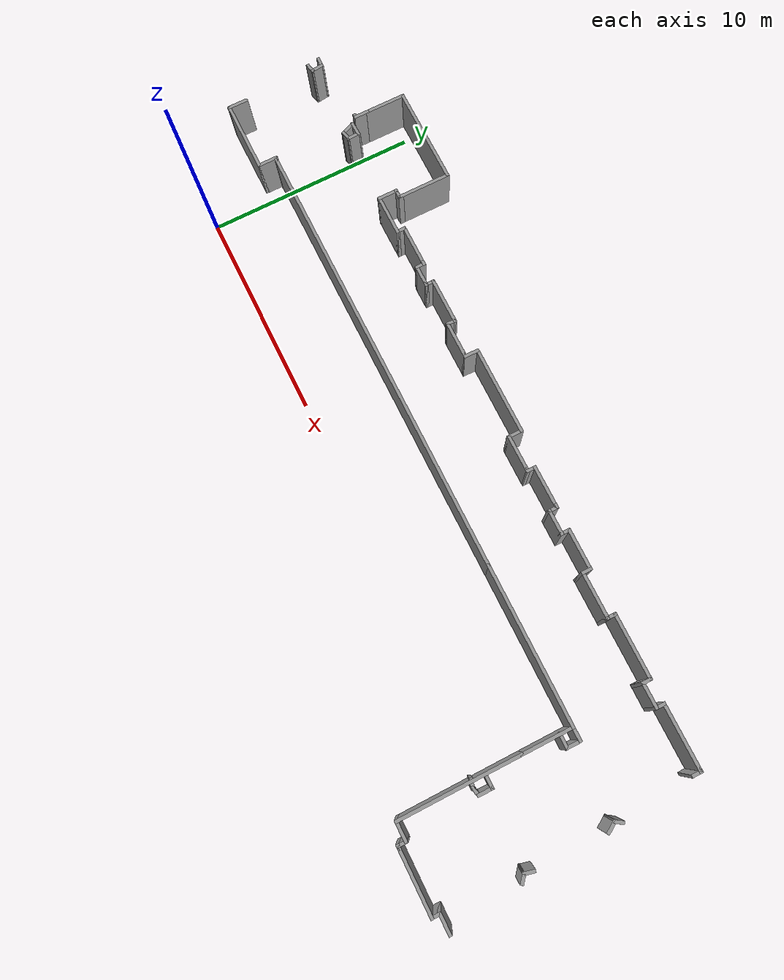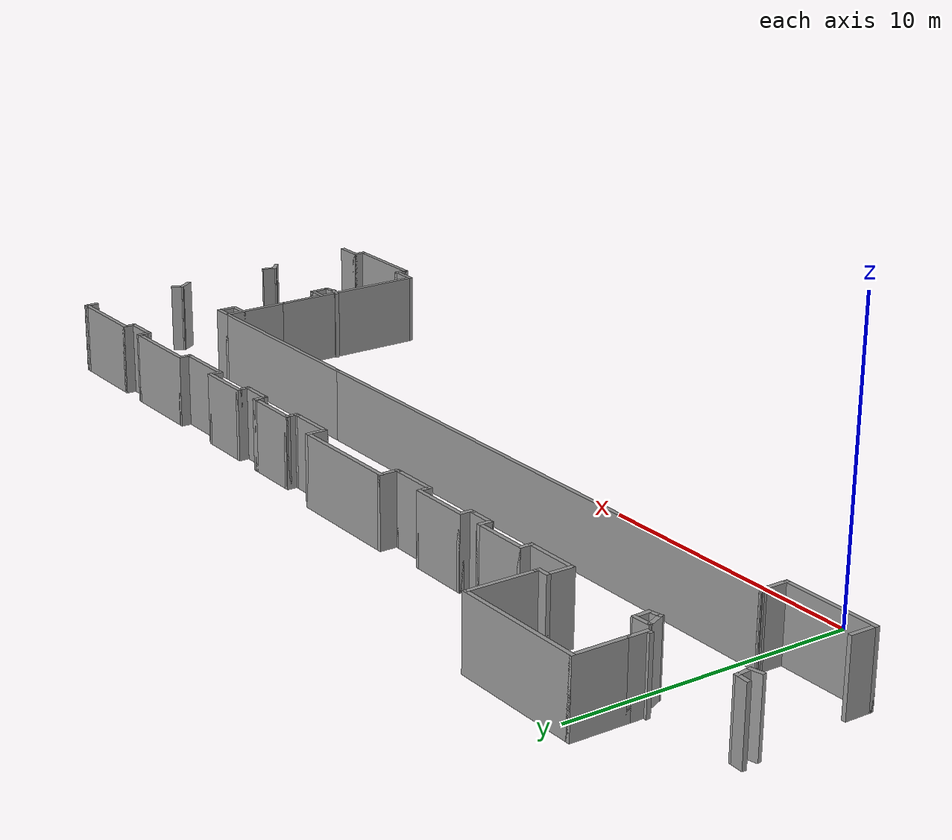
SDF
<sdf version="1.7">
 <model name="TD_n2">
  <pose>-6.42415 -9.1609 0 0 -0 0</pose>
  <link name="Wall_166">
   <collision name="Wall_166_Collision">
    <geometry><box><size>0.25 0.15 2.5</size></box></geometry>
    <pose>0 0 1.25 0 -0 0</pose>
   </collision>
   <visual name="Wall_166_Visual">
    <pose>0 0 1.25 0 -0 0</pose>
    <geometry><box><size>0.25 0.15 2.5</size></box></geometry>
    <material>
     <script><uri>file://media/materials/scripts/gazebo.material</uri><name>Gazebo/Grey</name></script>
     <ambient>1 1 1 1</ambient>
    </material>
    <meta><layer>0</layer></meta>
   </visual>
   <pose>5.50735 17.1407 0 0 -0 0</pose>
  </link>
  <link name="Wall_167">
   <collision name="Wall_167_Collision">
    <geometry><box><size>0.75 0.15 2.5</size></box></geometry>
    <pose>0 0 1.25 0 -0 0</pose>
   </collision>
   <visual name="Wall_167_Visual">
    <pose>0 0 1.25 0 -0 0</pose>
    <geometry><box><size>0.75 0.15 2.5</size></box></geometry>
    <material>
     <script><uri>file://media/materials/scripts/gazebo.material</uri><name>Gazebo/Grey</name></script>
     <ambient>1 1 1 1</ambient>
    </material>
    <meta><layer>0</layer></meta>
   </visual>
   <pose>5.55735 17.4407 0 0 -0 1.5708</pose>
  </link>
  <link name="Wall_168">
   <collision name="Wall_168_Collision">
    <geometry><box><size>2 0.15 2.5</size></box></geometry>
    <pose>0 0 1.25 0 -0 0</pose>
   </collision>
   <visual name="Wall_168_Visual">
    <pose>0 0 1.25 0 -0 0</pose>
    <geometry><box><size>2 0.15 2.5</size></box></geometry>
    <material>
     <script><uri>file://media/materials/scripts/gazebo.material</uri><name>Gazebo/Grey</name></script>
     <ambient>1 1 1 1</ambient>
    </material>
    <meta><layer>0</layer></meta>
   </visual>
   <pose>5.55735 18.6657 0 0 -0 1.5708</pose>
  </link>
  <link name="Wall_169">
   <collision name="Wall_169_Collision">
    <geometry><box><size>4.75 0.15 2.5</size></box></geometry>
    <pose>0 0 1.25 0 -0 0</pose>
   </collision>
   <visual name="Wall_169_Visual">
    <pose>0 0 1.25 0 -0 0</pose>
    <geometry><box><size>4.75 0.15 2.5</size></box></geometry>
    <material>
     <script><uri>file://media/materials/scripts/gazebo.material</uri><name>Gazebo/Grey</name></script>
     <ambient>1 1 1 1</ambient>
    </material>
    <meta><layer>0</layer></meta>
   </visual>
   <pose>7.85735 19.5907 0 0 -0 0</pose>
  </link>
  <link name="Wall_170">
   <collision name="Wall_170_Collision">
    <geometry><box><size>2.5 0.15 2.5</size></box></geometry>
    <pose>0 0 1.25 0 -0 0</pose>
   </collision>
   <visual name="Wall_170_Visual">
    <pose>0 0 1.25 0 -0 0</pose>
    <geometry><box><size>2.5 0.15 2.5</size></box></geometry>
    <material>
     <script><uri>file://media/materials/scripts/gazebo.material</uri><name>Gazebo/Grey</name></script>
     <ambient>1 1 1 1</ambient>
    </material>
    <meta><layer>0</layer></meta>
   </visual>
   <pose>10.1574 18.4157 0 0 -0 -1.5708</pose>
  </link>
  <link name="Wall_171">
   <collision name="Wall_171_Collision">
    <geometry><box><size>0.25 0.15 2.5</size></box></geometry>
    <pose>0 0 1.25 0 -0 0</pose>
   </collision>
   <visual name="Wall_171_Visual">
    <pose>0 0 1.25 0 -0 0</pose>
    <geometry><box><size>0.25 0.15 2.5</size></box></geometry>
    <material>
     <script><uri>file://media/materials/scripts/gazebo.material</uri><name>Gazebo/Grey</name></script>
     <ambient>1 1 1 1</ambient>
    </material>
    <meta><layer>0</layer></meta>
   </visual>
   <pose>10.1574 17.1907 0 0 -0 -1.5708</pose>
  </link>
  <link name="Wall_172">
   <collision name="Wall_172_Collision">
    <geometry><box><size>0.5 0.15 2.5</size></box></geometry>
    <pose>0 0 1.25 0 -0 0</pose>
   </collision>
   <visual name="Wall_172_Visual">
    <pose>0 0 1.25 0 -0 0</pose>
    <geometry><box><size>0.5 0.15 2.5</size></box></geometry>
    <material>
     <script><uri>file://media/materials/scripts/gazebo.material</uri><name>Gazebo/Grey</name></script>
     <ambient>1 1 1 1</ambient>
    </material>
    <meta><layer>0</layer></meta>
   </visual>
   <pose>9.98235 17.1407 0 0 -0 3.14159</pose>
  </link>
  <link name="Wall_173">
   <collision name="Wall_173_Collision">
    <geometry><box><size>1 0.15 2.5</size></box></geometry>
    <pose>0 0 1.25 0 -0 0</pose>
   </collision>
   <visual name="Wall_173_Visual">
    <pose>0 0 1.25 0 -0 0</pose>
    <geometry><box><size>1 0.15 2.5</size></box></geometry>
    <material>
     <script><uri>file://media/materials/scripts/gazebo.material</uri><name>Gazebo/Grey</name></script>
     <ambient>1 1 1 1</ambient>
    </material>
    <meta><layer>0</layer></meta>
   </visual>
   <pose>9.80735 16.7157 0 0 -0 -1.5708</pose>
  </link>
  <link name="Wall_174">
   <collision name="Wall_174_Collision">
    <geometry><box><size>2 0.15 2.5</size></box></geometry>
    <pose>0 0 1.25 0 -0 0</pose>
   </collision>
   <visual name="Wall_174_Visual">
    <pose>0 0 1.25 0 -0 0</pose>
    <geometry><box><size>2 0.15 2.5</size></box></geometry>
    <material>
     <script><uri>file://media/materials/scripts/gazebo.material</uri><name>Gazebo/Grey</name></script>
     <ambient>1 1 1 1</ambient>
    </material>
    <meta><layer>0</layer></meta>
   </visual>
   <pose>10.7324 16.2907 0 0 -0 0</pose>
  </link>
  <link name="Wall_175">
   <collision name="Wall_175_Collision">
    <geometry><box><size>0.5 0.15 2.5</size></box></geometry>
    <pose>0 0 1.25 0 -0 0</pose>
   </collision>
   <visual name="Wall_175_Visual">
    <pose>0 0 1.25 0 -0 0</pose>
    <geometry><box><size>0.5 0.15 2.5</size></box></geometry>
    <material>
     <script><uri>file://media/materials/scripts/gazebo.material</uri><name>Gazebo/Grey</name></script>
     <ambient>1 1 1 1</ambient>
    </material>
    <meta><layer>0</layer></meta>
   </visual>
   <pose>11.6574 16.4657 0 0 -0 1.5708</pose>
  </link>
  <link name="Wall_176">
   <collision name="Wall_176_Collision">
    <geometry><box><size>2 0.15 2.5</size></box></geometry>
    <pose>0 0 1.25 0 -0 0</pose>
   </collision>
   <visual name="Wall_176_Visual">
    <pose>0 0 1.25 0 -0 0</pose>
    <geometry><box><size>2 0.15 2.5</size></box></geometry>
    <material>
     <script><uri>file://media/materials/scripts/gazebo.material</uri><name>Gazebo/Grey</name></script>
     <ambient>1 1 1 1</ambient>
    </material>
    <meta><layer>0</layer></meta>
   </visual>
   <pose>12.5824 16.6407 0 0 -0 0</pose>
  </link>
  <link name="Wall_177">
   <collision name="Wall_177_Collision">
    <geometry><box><size>0.25 0.15 2.5</size></box></geometry>
    <pose>0 0 1.25 0 -0 0</pose>
   </collision>
   <visual name="Wall_177_Visual">
    <pose>0 0 1.25 0 -0 0</pose>
    <geometry><box><size>0.25 0.15 2.5</size></box></geometry>
    <material>
     <script><uri>file://media/materials/scripts/gazebo.material</uri><name>Gazebo/Grey</name></script>
     <ambient>1 1 1 1</ambient>
    </material>
    <meta><layer>0</layer></meta>
   </visual>
   <pose>13.5574 16.6407 0 0 -0 0</pose>
  </link>
  <link name="Wall_178">
   <collision name="Wall_178_Collision">
    <geometry><box><size>0.5 0.15 2.5</size></box></geometry>
    <pose>0 0 1.25 0 -0 0</pose>
   </collision>
   <visual name="Wall_178_Visual">
    <pose>0 0 1.25 0 -0 0</pose>
    <geometry><box><size>0.5 0.15 2.5</size></box></geometry>
    <material>
     <script><uri>file://media/materials/scripts/gazebo.material</uri><name>Gazebo/Grey</name></script>
     <ambient>1 1 1 1</ambient>
    </material>
    <meta><layer>0</layer></meta>
   </visual>
   <pose>13.6074 16.4657 0 0 -0 -1.5708</pose>
  </link>
  <link name="Wall_179">
   <collision name="Wall_179_Collision">
    <geometry><box><size>1 0.15 2.5</size></box></geometry>
    <pose>0 0 1.25 0 -0 0</pose>
   </collision>
   <visual name="Wall_179_Visual">
    <pose>0 0 1.25 0 -0 0</pose>
    <geometry><box><size>1 0.15 2.5</size></box></geometry>
    <material>
     <script><uri>file://media/materials/scripts/gazebo.material</uri><name>Gazebo/Grey</name></script>
     <ambient>1 1 1 1</ambient>
    </material>
    <meta><layer>0</layer></meta>
   </visual>
   <pose>14.0324 16.2907 0 0 -0 0</pose>
  </link>
  <link name="Wall_180">
   <collision name="Wall_180_Collision">
    <geometry><box><size>0.25 0.15 2.5</size></box></geometry>
    <pose>0 0 1.25 0 -0 0</pose>
   </collision>
   <visual name="Wall_180_Visual">
    <pose>0 0 1.25 0 -0 0</pose>
    <geometry><box><size>0.25 0.15 2.5</size></box></geometry>
    <material>
     <script><uri>file://media/materials/scripts/gazebo.material</uri><name>Gazebo/Grey</name></script>
     <ambient>1 1 1 1</ambient>
    </material>
    <meta><layer>0</layer></meta>
   </visual>
   <pose>14.5074 16.2907 0 0 -0 0</pose>
  </link>
  <link name="Wall_181">
   <collision name="Wall_181_Collision">
    <geometry><box><size>0.5 0.15 2.5</size></box></geometry>
    <pose>0 0 1.25 0 -0 0</pose>
   </collision>
   <visual name="Wall_181_Visual">
    <pose>0 0 1.25 0 -0 0</pose>
    <geometry><box><size>0.5 0.15 2.5</size></box></geometry>
    <material>
     <script><uri>file://media/materials/scripts/gazebo.material</uri><name>Gazebo/Grey</name></script>
     <ambient>1 1 1 1</ambient>
    </material>
    <meta><layer>0</layer></meta>
   </visual>
   <pose>14.5574 16.4657 0 0 -0 1.5708</pose>
  </link>
  <link name="Wall_182">
   <collision name="Wall_182_Collision">
    <geometry><box><size>2.25 0.15 2.5</size></box></geometry>
    <pose>0 0 1.25 0 -0 0</pose>
   </collision>
   <visual name="Wall_182_Visual">
    <pose>0 0 1.25 0 -0 0</pose>
    <geometry><box><size>2.25 0.15 2.5</size></box></geometry>
    <material>
     <script><uri>file://media/materials/scripts/gazebo.material</uri><name>Gazebo/Grey</name></script>
     <ambient>1 1 1 1</ambient>
    </material>
    <meta><layer>0</layer></meta>
   </visual>
   <pose>15.6074 16.6407 0 0 -0 0</pose>
  </link>
  <link name="Wall_183">
   <collision name="Wall_183_Collision">
    <geometry><box><size>0.5 0.15 2.5</size></box></geometry>
    <pose>0 0 1.25 0 -0 0</pose>
   </collision>
   <visual name="Wall_183_Visual">
    <pose>0 0 1.25 0 -0 0</pose>
    <geometry><box><size>0.5 0.15 2.5</size></box></geometry>
    <material>
     <script><uri>file://media/materials/scripts/gazebo.material</uri><name>Gazebo/Grey</name></script>
     <ambient>1 1 1 1</ambient>
    </material>
    <meta><layer>0</layer></meta>
   </visual>
   <pose>16.6574 16.4657 0 0 -0 -1.5708</pose>
  </link>
  <link name="Wall_185">
   <collision name="Wall_185_Collision">
    <geometry><box><size>1.75 0.15 2.5</size></box></geometry>
    <pose>0 0 1.25 0 -0 0</pose>
   </collision>
   <visual name="Wall_185_Visual">
    <pose>0 0 1.25 0 -0 0</pose>
    <geometry><box><size>1.75 0.15 2.5</size></box></geometry>
    <material>
     <script><uri>file://media/materials/scripts/gazebo.material</uri><name>Gazebo/Grey</name></script>
     <ambient>1 1 1 1</ambient>
    </material>
    <meta><layer>0</layer></meta>
   </visual>
   <pose>17.4574 16.2907 0 0 -0 0</pose>
  </link>
  <link name="Wall_186">
   <collision name="Wall_186_Collision">
    <geometry><box><size>0.25 0.15 2.5</size></box></geometry>
    <pose>0 0 1.25 0 -0 0</pose>
   </collision>
   <visual name="Wall_186_Visual">
    <pose>0 0 1.25 0 -0 0</pose>
    <geometry><box><size>0.25 0.15 2.5</size></box></geometry>
    <material>
     <script><uri>file://media/materials/scripts/gazebo.material</uri><name>Gazebo/Grey</name></script>
     <ambient>1 1 1 1</ambient>
    </material>
    <meta><layer>0</layer></meta>
   </visual>
   <pose>18.3074 16.2907 0 0 -0 0</pose>
  </link>
  <link name="Wall_187">
   <collision name="Wall_187_Collision">
    <geometry><box><size>0.75 0.15 2.5</size></box></geometry>
    <pose>0 0 1.25 0 -0 0</pose>
   </collision>
   <visual name="Wall_187_Visual">
    <pose>0 0 1.25 0 -0 0</pose>
    <geometry><box><size>0.75 0.15 2.5</size></box></geometry>
    <material>
     <script><uri>file://media/materials/scripts/gazebo.material</uri><name>Gazebo/Grey</name></script>
     <ambient>1 1 1 1</ambient>
    </material>
    <meta><layer>0</layer></meta>
   </visual>
   <pose>18.3574 16.5907 0 0 -0 1.5708</pose>
  </link>
  <link name="Wall_188">
   <collision name="Wall_188_Collision">
    <geometry><box><size>4.25 0.15 2.5</size></box></geometry>
    <pose>0 0 1.25 0 -0 0</pose>
   </collision>
   <visual name="Wall_188_Visual">
    <pose>0 0 1.25 0 -0 0</pose>
    <geometry><box><size>4.25 0.15 2.5</size></box></geometry>
    <material>
     <script><uri>file://media/materials/scripts/gazebo.material</uri><name>Gazebo/Grey</name></script>
     <ambient>1 1 1 1</ambient>
    </material>
    <meta><layer>0</layer></meta>
   </visual>
   <pose>20.4074 16.8907 0 0 -0 0</pose>
  </link>
  <link name="Wall_189">
   <collision name="Wall_189_Collision">
    <geometry><box><size>0.75 0.15 2.5</size></box></geometry>
    <pose>0 0 1.25 0 -0 0</pose>
   </collision>
   <visual name="Wall_189_Visual">
    <pose>0 0 1.25 0 -0 0</pose>
    <geometry><box><size>0.75 0.15 2.5</size></box></geometry>
    <material>
     <script><uri>file://media/materials/scripts/gazebo.material</uri><name>Gazebo/Grey</name></script>
     <ambient>1 1 1 1</ambient>
    </material>
    <meta><layer>0</layer></meta>
   </visual>
   <pose>22.4574 16.5907 0 0 -0 -1.5708</pose>
  </link>
  <link name="Wall_190">
   <collision name="Wall_190_Collision">
    <geometry><box><size>1.75 0.15 2.5</size></box></geometry>
    <pose>0 0 1.25 0 -0 0</pose>
   </collision>
   <visual name="Wall_190_Visual">
    <pose>0 0 1.25 0 -0 0</pose>
    <geometry><box><size>1.75 0.15 2.5</size></box></geometry>
    <material>
     <script><uri>file://media/materials/scripts/gazebo.material</uri><name>Gazebo/Grey</name></script>
     <ambient>1 1 1 1</ambient>
    </material>
    <meta><layer>0</layer></meta>
   </visual>
   <pose>23.2574 16.2907 0 0 -0 0</pose>
  </link>
  <link name="Wall_191">
   <collision name="Wall_191_Collision">
    <geometry><box><size>0.25 0.15 2.5</size></box></geometry>
    <pose>0 0 1.25 0 -0 0</pose>
   </collision>
   <visual name="Wall_191_Visual">
    <pose>0 0 1.25 0 -0 0</pose>
    <geometry><box><size>0.25 0.15 2.5</size></box></geometry>
    <material>
     <script><uri>file://media/materials/scripts/gazebo.material</uri><name>Gazebo/Grey</name></script>
     <ambient>1 1 1 1</ambient>
    </material>
    <meta><layer>0</layer></meta>
   </visual>
   <pose>24.1074 16.2907 0 0 -0 0</pose>
  </link>
  <link name="Wall_192">
   <collision name="Wall_192_Collision">
    <geometry><box><size>0.5 0.15 2.5</size></box></geometry>
    <pose>0 0 1.25 0 -0 0</pose>
   </collision>
   <visual name="Wall_192_Visual">
    <pose>0 0 1.25 0 -0 0</pose>
    <geometry><box><size>0.5 0.15 2.5</size></box></geometry>
    <material>
     <script><uri>file://media/materials/scripts/gazebo.material</uri><name>Gazebo/Grey</name></script>
     <ambient>1 1 1 1</ambient>
    </material>
    <meta><layer>0</layer></meta>
   </visual>
   <pose>24.1574 16.4657 0 0 -0 1.5708</pose>
  </link>
  <link name="Wall_193">
   <collision name="Wall_193_Collision">
    <geometry><box><size>2 0.15 2.5</size></box></geometry>
    <pose>0 0 1.25 0 -0 0</pose>
   </collision>
   <visual name="Wall_193_Visual">
    <pose>0 0 1.25 0 -0 0</pose>
    <geometry><box><size>2 0.15 2.5</size></box></geometry>
    <material>
     <script><uri>file://media/materials/scripts/gazebo.material</uri><name>Gazebo/Grey</name></script>
     <ambient>1 1 1 1</ambient>
    </material>
    <meta><layer>0</layer></meta>
   </visual>
   <pose>25.0824 16.6407 0 0 -0 0</pose>
  </link>
  <link name="Wall_194">
   <collision name="Wall_194_Collision">
    <geometry><box><size>0.25 0.15 2.5</size></box></geometry>
    <pose>0 0 1.25 0 -0 0</pose>
   </collision>
   <visual name="Wall_194_Visual">
    <pose>0 0 1.25 0 -0 0</pose>
    <geometry><box><size>0.25 0.15 2.5</size></box></geometry>
    <material>
     <script><uri>file://media/materials/scripts/gazebo.material</uri><name>Gazebo/Grey</name></script>
     <ambient>1 1 1 1</ambient>
    </material>
    <meta><layer>0</layer></meta>
   </visual>
   <pose>26.0574 16.6407 0 0 -0 0</pose>
  </link>
  <link name="Wall_195">
   <collision name="Wall_195_Collision">
    <geometry><box><size>0.5 0.15 2.5</size></box></geometry>
    <pose>0 0 1.25 0 -0 0</pose>
   </collision>
   <visual name="Wall_195_Visual">
    <pose>0 0 1.25 0 -0 0</pose>
    <geometry><box><size>0.5 0.15 2.5</size></box></geometry>
    <material>
     <script><uri>file://media/materials/scripts/gazebo.material</uri><name>Gazebo/Grey</name></script>
     <ambient>1 1 1 1</ambient>
    </material>
    <meta><layer>0</layer></meta>
   </visual>
   <pose>26.1074 16.4657 0 0 -0 -1.5708</pose>
  </link>
  <link name="Wall_196">
   <collision name="Wall_196_Collision">
    <geometry><box><size>1.25 0.15 2.5</size></box></geometry>
    <pose>0 0 1.25 0 -0 0</pose>
   </collision>
   <visual name="Wall_196_Visual">
    <pose>0 0 1.25 0 -0 0</pose>
    <geometry><box><size>1.25 0.15 2.5</size></box></geometry>
    <material>
     <script><uri>file://media/materials/scripts/gazebo.material</uri><name>Gazebo/Grey</name></script>
     <ambient>1 1 1 1</ambient>
    </material>
    <meta><layer>0</layer></meta>
   </visual>
   <pose>26.6574 16.2907 0 0 -0 0</pose>
  </link>
  <link name="Wall_197">
   <collision name="Wall_197_Collision">
    <geometry><box><size>0.5 0.15 2.5</size></box></geometry>
    <pose>0 0 1.25 0 -0 0</pose>
   </collision>
   <visual name="Wall_197_Visual">
    <pose>0 0 1.25 0 -0 0</pose>
    <geometry><box><size>0.5 0.15 2.5</size></box></geometry>
    <material>
     <script><uri>file://media/materials/scripts/gazebo.material</uri><name>Gazebo/Grey</name></script>
     <ambient>1 1 1 1</ambient>
    </material>
    <meta><layer>0</layer></meta>
   </visual>
   <pose>27.2074 16.4657 0 0 -0 1.5708</pose>
  </link>
  <link name="Wall_199">
   <collision name="Wall_199_Collision">
    <geometry><box><size>2 0.15 2.5</size></box></geometry>
    <pose>0 0 1.25 0 -0 0</pose>
   </collision>
   <visual name="Wall_199_Visual">
    <pose>0 0 1.25 0 -0 0</pose>
    <geometry><box><size>2 0.15 2.5</size></box></geometry>
    <material>
     <script><uri>file://media/materials/scripts/gazebo.material</uri><name>Gazebo/Grey</name></script>
     <ambient>1 1 1 1</ambient>
    </material>
    <meta><layer>0</layer></meta>
   </visual>
   <pose>28.1324 16.6407 0 0 -0 0</pose>
  </link>
  <link name="Wall_200">
   <collision name="Wall_200_Collision">
    <geometry><box><size>0.5 0.15 2.5</size></box></geometry>
    <pose>0 0 1.25 0 -0 0</pose>
   </collision>
   <visual name="Wall_200_Visual">
    <pose>0 0 1.25 0 -0 0</pose>
    <geometry><box><size>0.5 0.15 2.5</size></box></geometry>
    <material>
     <script><uri>file://media/materials/scripts/gazebo.material</uri><name>Gazebo/Grey</name></script>
     <ambient>1 1 1 1</ambient>
    </material>
    <meta><layer>0</layer></meta>
   </visual>
   <pose>29.0574 16.4657 0 0 -0 -1.5708</pose>
  </link>
  <link name="Wall_201">
   <collision name="Wall_201_Collision">
    <geometry><box><size>2.25 0.15 2.5</size></box></geometry>
    <pose>0 0 1.25 0 -0 0</pose>
   </collision>
   <visual name="Wall_201_Visual">
    <pose>0 0 1.25 0 -0 0</pose>
    <geometry><box><size>2.25 0.15 2.5</size></box></geometry>
    <material>
     <script><uri>file://media/materials/scripts/gazebo.material</uri><name>Gazebo/Grey</name></script>
     <ambient>1 1 1 1</ambient>
    </material>
    <meta><layer>0</layer></meta>
   </visual>
   <pose>30.1074 16.2907 0 0 -0 0</pose>
  </link>
  <link name="Wall_202">
   <collision name="Wall_202_Collision">
    <geometry><box><size>0.5 0.15 2.5</size></box></geometry>
    <pose>0 0 1.25 0 -0 0</pose>
   </collision>
   <visual name="Wall_202_Visual">
    <pose>0 0 1.25 0 -0 0</pose>
    <geometry><box><size>0.5 0.15 2.5</size></box></geometry>
    <material>
     <script><uri>file://media/materials/scripts/gazebo.material</uri><name>Gazebo/Grey</name></script>
     <ambient>1 1 1 1</ambient>
    </material>
    <meta><layer>0</layer></meta>
   </visual>
   <pose>31.1574 16.4657 0 0 -0 1.5708</pose>
  </link>
  <link name="Wall_203">
   <collision name="Wall_203_Collision">
    <geometry><box><size>3 0.15 2.5</size></box></geometry>
    <pose>0 0 1.25 0 -0 0</pose>
   </collision>
   <visual name="Wall_203_Visual">
    <pose>0 0 1.25 0 -0 0</pose>
    <geometry><box><size>3 0.15 2.5</size></box></geometry>
    <material>
     <script><uri>file://media/materials/scripts/gazebo.material</uri><name>Gazebo/Grey</name></script>
     <ambient>1 1 1 1</ambient>
    </material>
    <meta><layer>0</layer></meta>
   </visual>
   <pose>32.5824 16.6407 0 0 -0 0</pose>
  </link>
  <link name="Wall_204">
   <collision name="Wall_204_Collision">
    <geometry><box><size>0.25 0.15 2.5</size></box></geometry>
    <pose>0 0 1.25 0 -0 0</pose>
   </collision>
   <visual name="Wall_204_Visual">
    <pose>0 0 1.25 0 -0 0</pose>
    <geometry><box><size>0.25 0.15 2.5</size></box></geometry>
    <material>
     <script><uri>file://media/materials/scripts/gazebo.material</uri><name>Gazebo/Grey</name></script>
     <ambient>1 1 1 1</ambient>
    </material>
    <meta><layer>0</layer></meta>
   </visual>
   <pose>34.0574 16.6407 0 0 -0 0</pose>
  </link>
  <link name="Wall_205">
   <collision name="Wall_205_Collision">
    <geometry><box><size>0.5 0.15 2.5</size></box></geometry>
    <pose>0 0 1.25 0 -0 0</pose>
   </collision>
   <visual name="Wall_205_Visual">
    <pose>0 0 1.25 0 -0 0</pose>
    <geometry><box><size>0.5 0.15 2.5</size></box></geometry>
    <material>
     <script><uri>file://media/materials/scripts/gazebo.material</uri><name>Gazebo/Grey</name></script>
     <ambient>1 1 1 1</ambient>
    </material>
    <meta><layer>0</layer></meta>
   </visual>
   <pose>34.1074 16.4657 0 0 -0 -1.5708</pose>
  </link>
  <link name="Wall_206">
   <collision name="Wall_206_Collision">
    <geometry><box><size>1.25 0.15 2.5</size></box></geometry>
    <pose>0 0 1.25 0 -0 0</pose>
   </collision>
   <visual name="Wall_206_Visual">
    <pose>0 0 1.25 0 -0 0</pose>
    <geometry><box><size>1.25 0.15 2.5</size></box></geometry>
    <material>
     <script><uri>file://media/materials/scripts/gazebo.material</uri><name>Gazebo/Grey</name></script>
     <ambient>1 1 1 1</ambient>
    </material>
    <meta><layer>0</layer></meta>
   </visual>
   <pose>34.6574 16.2907 0 0 -0 0</pose>
  </link>
  <link name="Wall_207">
   <collision name="Wall_207_Collision">
    <geometry><box><size>0.5 0.15 2.5</size></box></geometry>
    <pose>0 0 1.25 0 -0 0</pose>
   </collision>
   <visual name="Wall_207_Visual">
    <pose>0 0 1.25 0 -0 0</pose>
    <geometry><box><size>0.5 0.15 2.5</size></box></geometry>
    <material>
     <script><uri>file://media/materials/scripts/gazebo.material</uri><name>Gazebo/Grey</name></script>
     <ambient>1 1 1 1</ambient>
    </material>
    <meta><layer>0</layer></meta>
   </visual>
   <pose>35.2074 16.4657 0 0 -0 1.5708</pose>
  </link>
  <link name="Wall_209">
   <collision name="Wall_209_Collision">
    <geometry><box><size>3 0.15 2.5</size></box></geometry>
    <pose>0 0 1.25 0 -0 0</pose>
   </collision>
   <visual name="Wall_209_Visual">
    <pose>0 0 1.25 0 -0 0</pose>
    <geometry><box><size>3 0.15 2.5</size></box></geometry>
    <material>
     <script><uri>file://media/materials/scripts/gazebo.material</uri><name>Gazebo/Grey</name></script>
     <ambient>1 1 1 1</ambient>
    </material>
    <meta><layer>0</layer></meta>
   </visual>
   <pose>36.6324 16.6407 0 0 -0 0</pose>
  </link>
  <link name="Wall_210">
   <collision name="Wall_210_Collision">
    <geometry><box><size>0.25 0.15 2.5</size></box></geometry>
    <pose>0 0 1.25 0 -0 0</pose>
   </collision>
   <visual name="Wall_210_Visual">
    <pose>0 0 1.25 0 -0 0</pose>
    <geometry><box><size>0.25 0.15 2.5</size></box></geometry>
    <material>
     <script><uri>file://media/materials/scripts/gazebo.material</uri><name>Gazebo/Grey</name></script>
     <ambient>1 1 1 1</ambient>
    </material>
    <meta><layer>0</layer></meta>
   </visual>
   <pose>38.1074 16.6407 0 0 -0 0</pose>
  </link>
  <link name="Wall_211">
   <collision name="Wall_211_Collision">
    <geometry><box><size>0.5 0.15 2.5</size></box></geometry>
    <pose>0 0 1.25 0 -0 0</pose>
   </collision>
   <visual name="Wall_211_Visual">
    <pose>0 0 1.25 0 -0 0</pose>
    <geometry><box><size>0.5 0.15 2.5</size></box></geometry>
    <material>
     <script><uri>file://media/materials/scripts/gazebo.material</uri><name>Gazebo/Grey</name></script>
     <ambient>1 1 1 1</ambient>
    </material>
    <meta><layer>0</layer></meta>
   </visual>
   <pose>38.1574 16.4657 0 0 -0 -1.5708</pose>
  </link>
  <link name="Wall_288">
   <collision name="Wall_288_Collision">
    <geometry><box><size>1 0.15 2.5</size></box></geometry>
    <pose>0 0 1.25 0 -0 0</pose>
   </collision>
   <visual name="Wall_288_Visual">
    <pose>0 0 1.25 0 -0 0</pose>
    <geometry><box><size>1 0.15 2.5</size></box></geometry>
    <material>
     <script><uri>file://media/materials/scripts/gazebo.material</uri><name>Gazebo/Grey</name></script>
     <ambient>1 1 1 1</ambient>
    </material>
    <meta><layer>0</layer></meta>
   </visual>
   <pose>38.5682 4.97019 0 0 -0 3.14159</pose>
  </link>
  <link name="Wall_289">
   <collision name="Wall_289_Collision">
    <geometry><box><size>0.5 0.15 2.5</size></box></geometry>
    <pose>0 0 1.25 0 -0 0</pose>
   </collision>
   <visual name="Wall_289_Visual">
    <pose>0 0 1.25 0 -0 0</pose>
    <geometry><box><size>0.5 0.15 2.5</size></box></geometry>
    <material>
     <script><uri>file://media/materials/scripts/gazebo.material</uri><name>Gazebo/Grey</name></script>
     <ambient>1 1 1 1</ambient>
    </material>
    <meta><layer>0</layer></meta>
   </visual>
   <pose>38.1432 4.79519 0 0 -0 -1.5708</pose>
  </link>
  <link name="Wall_290">
   <collision name="Wall_290_Collision">
    <geometry><box><size>3 0.15 2.5</size></box></geometry>
    <pose>0 0 1.25 0 -0 0</pose>
   </collision>
   <visual name="Wall_290_Visual">
    <pose>0 0 1.25 0 -0 0</pose>
    <geometry><box><size>3 0.15 2.5</size></box></geometry>
    <material>
     <script><uri>file://media/materials/scripts/gazebo.material</uri><name>Gazebo/Grey</name></script>
     <ambient>1 1 1 1</ambient>
    </material>
    <meta><layer>0</layer></meta>
   </visual>
   <pose>36.7182 4.62019 0 0 -0 3.14159</pose>
  </link>
  <link name="Wall_291">
   <collision name="Wall_291_Collision">
    <geometry><box><size>0.25 0.15 2.5</size></box></geometry>
    <pose>0 0 1.25 0 -0 0</pose>
   </collision>
   <visual name="Wall_291_Visual">
    <pose>0 0 1.25 0 -0 0</pose>
    <geometry><box><size>0.25 0.15 2.5</size></box></geometry>
    <material>
     <script><uri>file://media/materials/scripts/gazebo.material</uri><name>Gazebo/Grey</name></script>
     <ambient>1 1 1 1</ambient>
    </material>
    <meta><layer>0</layer></meta>
   </visual>
   <pose>35.2432 4.62019 0 0 -0 3.14159</pose>
  </link>
  <link name="Wall_292">
   <collision name="Wall_292_Collision">
    <geometry><box><size>0.5 0.15 2.5</size></box></geometry>
    <pose>0 0 1.25 0 -0 0</pose>
   </collision>
   <visual name="Wall_292_Visual">
    <pose>0 0 1.25 0 -0 0</pose>
    <geometry><box><size>0.5 0.15 2.5</size></box></geometry>
    <material>
     <script><uri>file://media/materials/scripts/gazebo.material</uri><name>Gazebo/Grey</name></script>
     <ambient>1 1 1 1</ambient>
    </material>
    <meta><layer>0</layer></meta>
   </visual>
   <pose>35.1932 4.79519 0 0 -0 1.5708</pose>
  </link>
  <link name="Wall_293">
   <collision name="Wall_293_Collision">
    <geometry><box><size>1 0.15 2.5</size></box></geometry>
    <pose>0 0 1.25 0 -0 0</pose>
   </collision>
   <visual name="Wall_293_Visual">
    <pose>0 0 1.25 0 -0 0</pose>
    <geometry><box><size>1 0.15 2.5</size></box></geometry>
    <material>
     <script><uri>file://media/materials/scripts/gazebo.material</uri><name>Gazebo/Grey</name></script>
     <ambient>1 1 1 1</ambient>
    </material>
    <meta><layer>0</layer></meta>
   </visual>
   <pose>34.7682 4.97019 0 0 -0 3.14159</pose>
  </link>
  <link name="Wall_294">
   <collision name="Wall_294_Collision">
    <geometry><box><size>5.75 0.15 2.5</size></box></geometry>
    <pose>0 0 1.25 0 -0 0</pose>
   </collision>
   <visual name="Wall_294_Visual">
    <pose>0 0 1.25 0 -0 0</pose>
    <geometry><box><size>5.75 0.15 2.5</size></box></geometry>
    <material>
     <script><uri>file://media/materials/scripts/gazebo.material</uri><name>Gazebo/Grey</name></script>
     <ambient>1 1 1 1</ambient>
    </material>
    <meta><layer>0</layer></meta>
   </visual>
   <pose>34.3432 7.77019 0 0 -0 1.5708</pose>
  </link>
  <link name="Wall_296">
   <collision name="Wall_296_Collision">
    <geometry><box><size>2.5 0.15 2.5</size></box></geometry>
    <pose>0 0 1.25 0 -0 0</pose>
   </collision>
   <visual name="Wall_296_Visual">
    <pose>0 0 1.25 0 -0 0</pose>
    <geometry><box><size>2.5 0.15 2.5</size></box></geometry>
    <material>
     <script><uri>file://media/materials/scripts/gazebo.material</uri><name>Gazebo/Grey</name></script>
     <ambient>1 1 1 1</ambient>
    </material>
    <meta><layer>0</layer></meta>
   </visual>
   <pose>34.3432 11.7452 0 0 -0 1.5708</pose>
  </link>
  <link name="Wall_297">
   <collision name="Wall_297_Collision">
    <geometry><box><size>7.5 0.15 2.5</size></box></geometry>
    <pose>0 0 1.25 0 -0 0</pose>
   </collision>
   <visual name="Wall_297_Visual">
    <pose>0 0 1.25 0 -0 0</pose>
    <geometry><box><size>7.5 0.15 2.5</size></box></geometry>
    <material>
     <script><uri>file://media/materials/scripts/gazebo.material</uri><name>Gazebo/Grey</name></script>
     <ambient>1 1 1 1</ambient>
    </material>
    <meta><layer>0</layer></meta>
   </visual>
   <pose>30.6682 12.9202 0 0 -0 3.14159</pose>
  </link>
  <link name="Wall_299">
   <collision name="Wall_299_Collision">
    <geometry><box><size>21.25 0.15 2.5</size></box></geometry>
    <pose>0 0 1.25 0 -0 0</pose>
   </collision>
   <visual name="Wall_299_Visual">
    <pose>0 0 1.25 0 -0 0</pose>
    <geometry><box><size>21.25 0.15 2.5</size></box></geometry>
    <material>
     <script><uri>file://media/materials/scripts/gazebo.material</uri><name>Gazebo/Grey</name></script>
     <ambient>1 1 1 1</ambient>
    </material>
    <meta><layer>0</layer></meta>
   </visual>
   <pose>16.4432 12.9202 0 0 -0 3.14159</pose>
  </link>
  <link name="Wall_300">
   <collision name="Wall_300_Collision">
    <geometry><box><size>0.25 0.15 2.5</size></box></geometry>
    <pose>0 0 1.25 0 -0 0</pose>
   </collision>
   <visual name="Wall_300_Visual">
    <pose>0 0 1.25 0 -0 0</pose>
    <geometry><box><size>0.25 0.15 2.5</size></box></geometry>
    <material>
     <script><uri>file://media/materials/scripts/gazebo.material</uri><name>Gazebo/Grey</name></script>
     <ambient>1 1 1 1</ambient>
    </material>
    <meta><layer>0</layer></meta>
   </visual>
   <pose>5.84489 12.9331 0 0 -0 2.87979</pose>
  </link>
  <link name="Wall_301">
   <collision name="Wall_301_Collision">
    <geometry><box><size>1 0.15 2.5</size></box></geometry>
    <pose>0 0 1.25 0 -0 0</pose>
   </collision>
   <visual name="Wall_301_Visual">
    <pose>0 0 1.25 0 -0 0</pose>
    <geometry><box><size>1 0.15 2.5</size></box></geometry>
    <material>
     <script><uri>file://media/materials/scripts/gazebo.material</uri><name>Gazebo/Grey</name></script>
     <ambient>1 1 1 1</ambient>
    </material>
    <meta><layer>0</layer></meta>
   </visual>
   <pose>5.79659 12.5211 0 0 -0 -1.5708</pose>
  </link>
  <link name="Wall_302">
   <collision name="Wall_302_Collision">
    <geometry><box><size>3.5 0.15 2.5</size></box></geometry>
    <pose>0 0 1.25 0 -0 0</pose>
   </collision>
   <visual name="Wall_302_Visual">
    <pose>0 0 1.25 0 -0 0</pose>
    <geometry><box><size>3.5 0.15 2.5</size></box></geometry>
    <material>
     <script><uri>file://media/materials/scripts/gazebo.material</uri><name>Gazebo/Grey</name></script>
     <ambient>1 1 1 1</ambient>
    </material>
    <meta><layer>0</layer></meta>
   </visual>
   <pose>4.12159 12.0961 0 0 -0 3.14159</pose>
  </link>
  <link name="Wall_303">
   <collision name="Wall_303_Collision">
    <geometry><box><size>1 0.15 2.5</size></box></geometry>
    <pose>0 0 1.25 0 -0 0</pose>
   </collision>
   <visual name="Wall_303_Visual">
    <pose>0 0 1.25 0 -0 0</pose>
    <geometry><box><size>1 0.15 2.5</size></box></geometry>
    <material>
     <script><uri>file://media/materials/scripts/gazebo.material</uri><name>Gazebo/Grey</name></script>
     <ambient>1 1 1 1</ambient>
    </material>
    <meta><layer>0</layer></meta>
   </visual>
   <pose>2.44659 12.5211 0 0 -0 1.5708</pose>
  </link>
  <link name="Wall_481">
   <collision name="Wall_481_Collision">
    <geometry><box><size>0.532687 0.15 2.5</size></box></geometry>
    <pose>0 0 1.25 0 -0 0</pose>
   </collision>
   <visual name="Wall_481_Visual">
    <pose>0 0 1.25 0 -0 0</pose>
    <geometry><box><size>0.532687 0.15 2.5</size></box></geometry>
    <material>
     <script><uri>file://media/materials/scripts/gazebo.material</uri><name>Gazebo/Grey</name></script>
     <ambient>1 1 1 1</ambient>
    </material>
    <meta><layer>0</layer></meta>
   </visual>
   <pose>2.18725 16.9022 0 0 -0 -0.052583</pose>
  </link>
  <link name="Wall_482">
   <collision name="Wall_482_Collision">
    <geometry><box><size>0.636482 0.15 2.5</size></box></geometry>
    <pose>0 0 1.25 0 -0 0</pose>
   </collision>
   <visual name="Wall_482_Visual">
    <pose>0 0 1.25 0 -0 0</pose>
    <geometry><box><size>0.636482 0.15 2.5</size></box></geometry>
    <material>
     <script><uri>file://media/materials/scripts/gazebo.material</uri><name>Gazebo/Grey</name></script>
     <ambient>1 1 1 1</ambient>
    </material>
    <meta><layer>0</layer></meta>
   </visual>
   <pose>2.4085 16.6508 0 0 -0 -1.44644</pose>
  </link>
  <link name="Wall_483">
   <collision name="Wall_483_Collision">
    <geometry><box><size>0.501268 0.15 2.5</size></box></geometry>
    <pose>0 0 1.25 0 -0 0</pose>
   </collision>
   <visual name="Wall_483_Visual">
    <pose>0 0 1.25 0 -0 0</pose>
    <geometry><box><size>0.501268 0.15 2.5</size></box></geometry>
    <material>
     <script><uri>file://media/materials/scripts/gazebo.material</uri><name>Gazebo/Grey</name></script>
     <ambient>1 1 1 1</ambient>
    </material>
    <meta><layer>0</layer></meta>
   </visual>
   <pose>2.2677 16.3692 0 0 -0 -2.9105</pose>
  </link>
  <link name="Wall_487">
   <collision name="Wall_487_Collision">
    <geometry><box><size>0.713539 0.15 2.5</size></box></geometry>
    <pose>0 0 1.25 0 -0 0</pose>
   </collision>
   <visual name="Wall_487_Visual">
    <pose>0 0 1.25 0 -0 0</pose>
    <geometry><box><size>0.713539 0.15 2.5</size></box></geometry>
    <material>
     <script><uri>file://media/materials/scripts/gazebo.material</uri><name>Gazebo/Grey</name></script>
     <ambient>1 1 1 1</ambient>
    </material>
    <meta><layer>0</layer></meta>
   </visual>
   <pose>6.11945 16.862 0 0 -0 0.035699</pose>
  </link>
  <link name="Wall_488">
   <collision name="Wall_488_Collision">
    <geometry><box><size>0.653241 0.15 2.5</size></box></geometry>
    <pose>0 0 1.25 0 -0 0</pose>
   </collision>
   <visual name="Wall_488_Visual">
    <pose>0 0 1.25 0 -0 0</pose>
    <geometry><box><size>0.653241 0.15 2.5</size></box></geometry>
    <material>
     <script><uri>file://media/materials/scripts/gazebo.material</uri><name>Gazebo/Grey</name></script>
     <ambient>1 1 1 1</ambient>
    </material>
    <meta><layer>0</layer></meta>
   </visual>
   <pose>6.4111 16.6206 0 0 -0 -1.53082</pose>
  </link>
  <link name="Wall_489">
   <collision name="Wall_489_Collision">
    <geometry><box><size>0.520876 0.15 2.5</size></box></geometry>
    <pose>0 0 1.25 0 -0 0</pose>
   </collision>
   <visual name="Wall_489_Visual">
    <pose>0 0 1.25 0 -0 0</pose>
    <geometry><box><size>0.520876 0.15 2.5</size></box></geometry>
    <material>
     <script><uri>file://media/materials/scripts/gazebo.material</uri><name>Gazebo/Grey</name></script>
     <ambient>1 1 1 1</ambient>
    </material>
    <meta><layer>0</layer></meta>
   </visual>
   <pose>6.24013 16.329 0 0 -0 -2.92292</pose>
  </link>
  <link name="Wall_490">
   <collision name="Wall_490_Collision">
    <geometry><box><size>0.699362 0.15 2.5</size></box></geometry>
    <pose>0 0 1.25 0 -0 0</pose>
   </collision>
   <visual name="Wall_490_Visual">
    <pose>0 0 1.25 0 -0 0</pose>
    <geometry><box><size>0.699362 0.15 2.5</size></box></geometry>
    <material>
     <script><uri>file://media/materials/scripts/gazebo.material</uri><name>Gazebo/Grey</name></script>
     <ambient>1 1 1 1</ambient>
    </material>
    <meta><layer>0</layer></meta>
   </visual>
   <pose>5.94848 16.5402 0 0 -0 1.9853</pose>
  </link>
  <link name="Wall_492">
   <collision name="Wall_492_Collision">
    <geometry><box><size>0.75 0.15 2.5</size></box></geometry>
    <pose>0 0 1.25 0 -0 0</pose>
   </collision>
   <visual name="Wall_492_Visual">
    <pose>0 0 1.25 0 -0 0</pose>
    <geometry><box><size>0.75 0.15 2.5</size></box></geometry>
    <material>
     <script><uri>file://media/materials/scripts/gazebo.material</uri><name>Gazebo/Grey</name></script>
     <ambient>1 1 1 1</ambient>
    </material>
    <meta><layer>0</layer></meta>
   </visual>
   <pose>34.6432 12.9202 0 0 -0 0</pose>
  </link>
  <link name="Wall_493">
   <collision name="Wall_493_Collision">
    <geometry><box><size>0.75 0.15 2.5</size></box></geometry>
    <pose>0 0 1.25 0 -0 0</pose>
   </collision>
   <visual name="Wall_493_Visual">
    <pose>0 0 1.25 0 -0 0</pose>
    <geometry><box><size>0.75 0.15 2.5</size></box></geometry>
    <material>
     <script><uri>file://media/materials/scripts/gazebo.material</uri><name>Gazebo/Grey</name></script>
     <ambient>1 1 1 1</ambient>
    </material>
    <meta><layer>0</layer></meta>
   </visual>
   <pose>34.9432 12.6202 0 0 -0 -1.5708</pose>
  </link>
  <link name="Wall_494">
   <collision name="Wall_494_Collision">
    <geometry><box><size>0.75 0.15 2.5</size></box></geometry>
    <pose>0 0 1.25 0 -0 0</pose>
   </collision>
   <visual name="Wall_494_Visual">
    <pose>0 0 1.25 0 -0 0</pose>
    <geometry><box><size>0.75 0.15 2.5</size></box></geometry>
    <material>
     <script><uri>file://media/materials/scripts/gazebo.material</uri><name>Gazebo/Grey</name></script>
     <ambient>1 1 1 1</ambient>
    </material>
    <meta><layer>0</layer></meta>
   </visual>
   <pose>34.6432 12.3202 0 0 -0 3.14159</pose>
  </link>
  <link name="Wall_510">
   <collision name="Wall_510_Collision">
    <geometry><box><size>0.75 0.15 2.5</size></box></geometry>
    <pose>0 0 1.25 0 -0 0</pose>
   </collision>
   <visual name="Wall_510_Visual">
    <pose>0 0 1.25 0 -0 0</pose>
    <geometry><box><size>0.75 0.15 2.5</size></box></geometry>
    <material>
     <script><uri>file://media/materials/scripts/gazebo.material</uri><name>Gazebo/Grey</name></script>
     <ambient>1 1 1 1</ambient>
    </material>
    <meta><layer>0</layer></meta>
   </visual>
   <pose>34.6461 8.92905 0 0 -0 0</pose>
  </link>
  <link name="Wall_511">
   <collision name="Wall_511_Collision">
    <geometry><box><size>0.75 0.15 2.5</size></box></geometry>
    <pose>0 0 1.25 0 -0 0</pose>
   </collision>
   <visual name="Wall_511_Visual">
    <pose>0 0 1.25 0 -0 0</pose>
    <geometry><box><size>0.75 0.15 2.5</size></box></geometry>
    <material>
     <script><uri>file://media/materials/scripts/gazebo.material</uri><name>Gazebo/Grey</name></script>
     <ambient>1 1 1 1</ambient>
    </material>
    <meta><layer>0</layer></meta>
   </visual>
   <pose>34.9461 8.62905 0 0 -0 -1.5708</pose>
  </link>
  <link name="Wall_512">
   <collision name="Wall_512_Collision">
    <geometry><box><size>0.5 0.15 2.5</size></box></geometry>
    <pose>0 0 1.25 0 -0 0</pose>
   </collision>
   <visual name="Wall_512_Visual">
    <pose>0 0 1.25 0 -0 0</pose>
    <geometry><box><size>0.5 0.15 2.5</size></box></geometry>
    <material>
     <script><uri>file://media/materials/scripts/gazebo.material</uri><name>Gazebo/Grey</name></script>
     <ambient>1 1 1 1</ambient>
    </material>
    <meta><layer>0</layer></meta>
   </visual>
   <pose>34.7771 8.28376 0 0 -0 -2.87979</pose>
  </link>
  <link name="Wall_513">
   <collision name="Wall_513_Collision">
    <geometry><box><size>0.5 0.15 2.5</size></box></geometry>
    <pose>0 0 1.25 0 -0 0</pose>
   </collision>
   <visual name="Wall_513_Visual">
    <pose>0 0 1.25 0 -0 0</pose>
    <geometry><box><size>0.5 0.15 2.5</size></box></geometry>
    <material>
     <script><uri>file://media/materials/scripts/gazebo.material</uri><name>Gazebo/Grey</name></script>
     <ambient>1 1 1 1</ambient>
    </material>
    <meta><layer>0</layer></meta>
   </visual>
   <pose>34.439 8.28376 0 0 -0 2.87979</pose>
  </link>
  <link name="Wall_568">
   <collision name="Wall_568_Collision">
    <geometry><box><size>0.646769 0.15 2.5</size></box></geometry>
    <pose>0 0 1.25 0 -0 0</pose>
   </collision>
   <visual name="Wall_568_Visual">
    <pose>0 0 1.25 0 -0 0</pose>
    <geometry><box><size>0.646769 0.15 2.5</size></box></geometry>
    <material>
     <script><uri>file://media/materials/scripts/gazebo.material</uri><name>Gazebo/Grey</name></script>
     <ambient>1 1 1 1</ambient>
    </material>
    <meta><layer>0</layer></meta>
   </visual>
   <pose>38.3784 12.4451 0 0 -0 2.1251</pose>
  </link>
  <link name="Wall_569">
   <collision name="Wall_569_Collision">
    <geometry><box><size>0.468023 0.15 2.5</size></box></geometry>
    <pose>0 0 1.25 0 -0 0</pose>
   </collision>
   <visual name="Wall_569_Visual">
    <pose>0 0 1.25 0 -0 0</pose>
    <geometry><box><size>0.468023 0.15 2.5</size></box></geometry>
    <material>
     <script><uri>file://media/materials/scripts/gazebo.material</uri><name>Gazebo/Grey</name></script>
     <ambient>1 1 1 1</ambient>
    </material>
    <meta><layer>0</layer></meta>
   </visual>
   <pose>38.3382 12.787 0 0 -0 0.965252</pose>
  </link>
  <link name="Wall_580">
   <collision name="Wall_580_Collision">
    <geometry><box><size>0.515785 0.15 2.5</size></box></geometry>
    <pose>0 0 1.25 0 -0 0</pose>
   </collision>
   <visual name="Wall_580_Visual">
    <pose>0 0 1.25 0 -0 0</pose>
    <geometry><box><size>0.515785 0.15 2.5</size></box></geometry>
    <material>
     <script><uri>file://media/materials/scripts/gazebo.material</uri><name>Gazebo/Grey</name></script>
     <ambient>1 1 1 1</ambient>
    </material>
    <meta><layer>0</layer></meta>
   </visual>
   <pose>38.4755 8.43789 0 0 -0 2.43297</pose>
  </link>
  <link name="Wall_581">
   <collision name="Wall_581_Collision">
    <geometry><box><size>0.54454 0.15 2.5</size></box></geometry>
    <pose>0 0 1.25 0 -0 0</pose>
   </collision>
   <visual name="Wall_581_Visual">
    <pose>0 0 1.25 0 -0 0</pose>
    <geometry><box><size>0.54454 0.15 2.5</size></box></geometry>
    <material>
     <script><uri>file://media/materials/scripts/gazebo.material</uri><name>Gazebo/Grey</name></script>
     <ambient>1 1 1 1</ambient>
    </material>
    <meta><layer>0</layer></meta>
   </visual>
   <pose>38.3829 8.74867 0 0 -0 1.33395</pose>
  </link>
  <static>1</static>
 </model>
</sdf>
